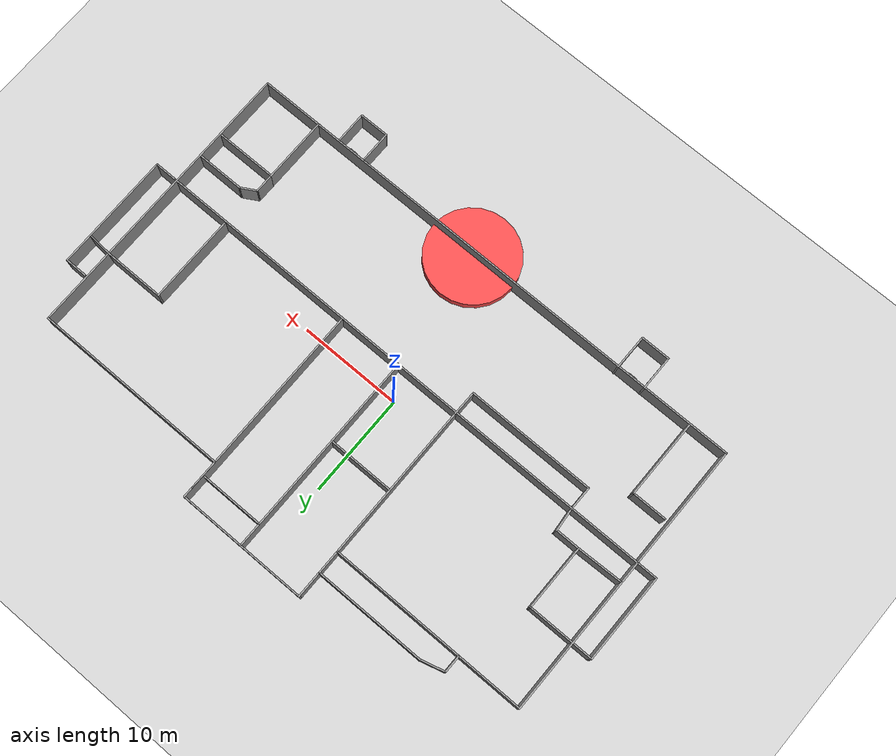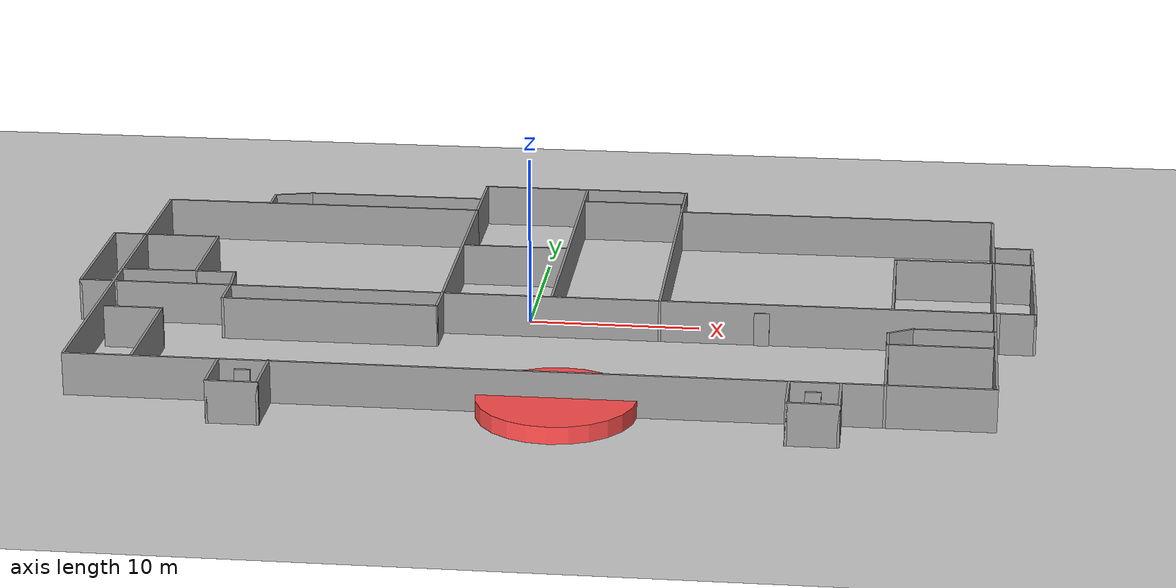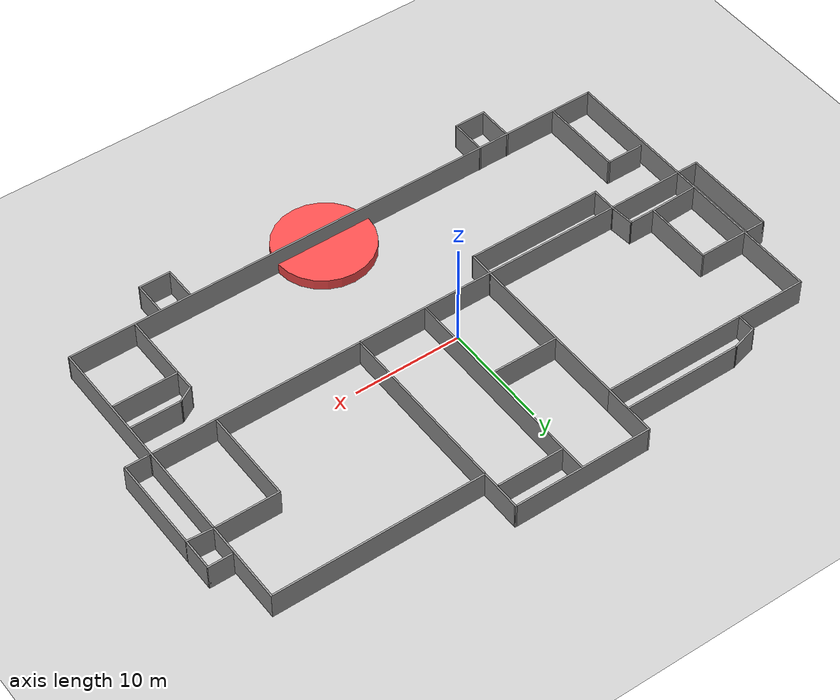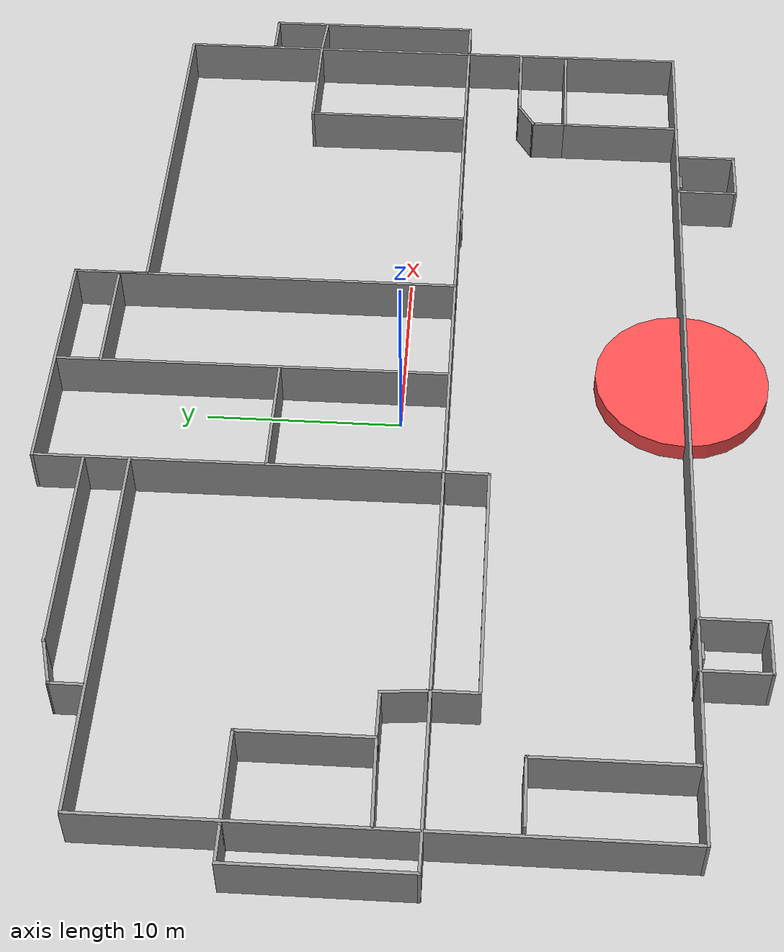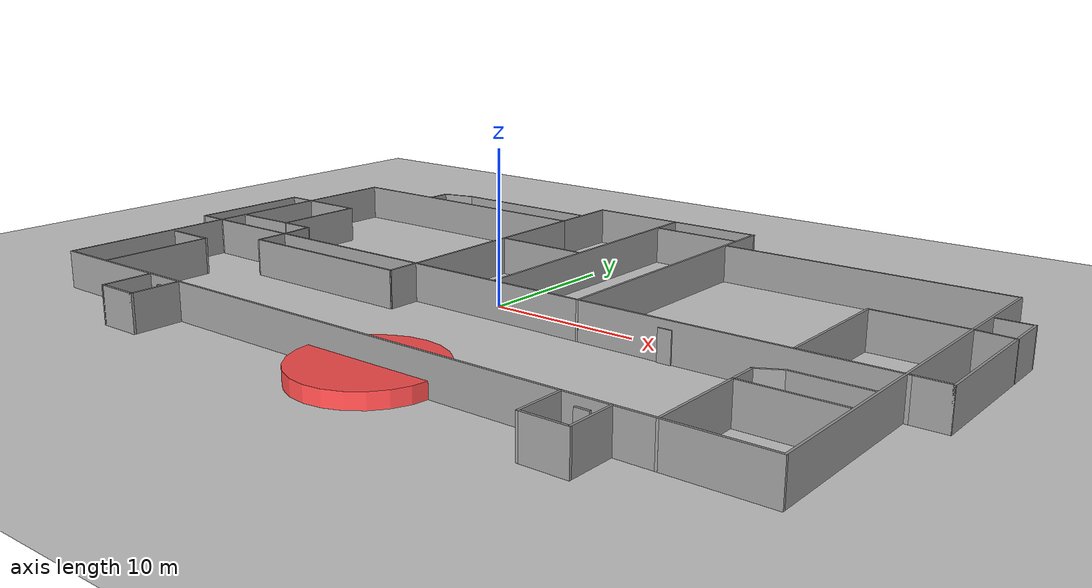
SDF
<sdf version="1.7">
 <world name="default">
  <light name="sun" type="directional">
   <pose>0 0 10 0 -0 0</pose>
   <diffuse>0.8 0.8 0.8 1</diffuse>
   <specular>0.2 0.2 0.2 1</specular>
   <attenuation>
    <range>1000</range>
    <constant>0.9</constant>
    <linear>0.01</linear>
    <quadratic>0.001</quadratic>
   </attenuation>
   <direction>-0.5 0.1 -0.9</direction>
   <spot><inner_angle>0</inner_angle><outer_angle>0</outer_angle><falloff>0</falloff></spot>
  </light>
  <model name="ground_plane">
   <static>1</static>
   <link name="link">
    <collision name="collision">
     <geometry><plane><normal>0 0 1</normal><size>100 100</size></plane></geometry>
     <surface>
      <contact><collide_bitmask>65535</collide_bitmask></contact>
      <friction><ode><mu>100</mu><mu2>50</mu2></ode></friction>
     </surface>
    </collision>
    <visual name="visual">
     <cast_shadows>0</cast_shadows>
     <geometry><plane><normal>0 0 1</normal><size>100 100</size></plane></geometry>
     <material>
      <script><uri>file://media/materials/scripts/gazebo.material</uri><name>Gazebo/Grey</name></script>
     </material>
    </visual>
   </link>
  </model>
  <gravity>0 0 -9.8</gravity>
  <magnetic_field>6e-06 2.3e-05 -4.2e-05</magnetic_field>
  <atmosphere type="adiabatic"/>
  <physics name="default_physics" default="0" type="ode">
   <max_step_size>0.001</max_step_size>
   <real_time_factor>1</real_time_factor>
   <real_time_update_rate>1000</real_time_update_rate>
  </physics>
  <scene><ambient>0.4 0.4 0.4 1</ambient><background>0.7 0.7 0.7 1</background><shadows>1</shadows></scene>
  <audio><device>default</device></audio>
  <spherical_coordinates>
   <surface_model>EARTH_WGS84</surface_model>
   <latitude_deg>0</latitude_deg>
   <longitude_deg>0</longitude_deg>
   <elevation>0</elevation>
   <heading_deg>0</heading_deg>
  </spherical_coordinates>
  <model name="NankiAirport_1F">
   <pose>1.5023 0.065 0 0 -0 0</pose>
   <link name="Door_0">
    <collision name="Door_0_Collision">
     <geometry><box><size>0.9 0.17 2</size></box></geometry>
     <pose>0 0 1 0 -0 0</pose>
    </collision>
    <visual name="Door_0_Visual">
     <pose>0 0 1 0 -0 0</pose>
     <geometry><box><size>0.9 0.17 2</size></box></geometry>
     <material>
      <script><uri>file://media/materials/scripts/gazebo.material</uri><name>Gazebo/Grey</name></script>
     </material>
    </visual>
    <pose>-15.871 -14.7686 0 0 -0 0</pose>
   </link>
   <link name="Door_1">
    <collision name="Door_1_Collision">
     <geometry><box><size>0.9 0.17 2</size></box></geometry>
     <pose>0 0 1 0 -0 0</pose>
    </collision>
    <visual name="Door_1_Visual">
     <pose>0 0 1 0 -0 0</pose>
     <geometry><box><size>0.9 0.17 2</size></box></geometry>
     <material>
      <script><uri>file://media/materials/scripts/gazebo.material</uri><name>Gazebo/Grey</name></script>
     </material>
    </visual>
    <pose>15.7475 -14.7686 0 0 -0 0</pose>
   </link>
   <link name="Door_2">
    <collision name="Door_2_Collision">
     <geometry><box><size>0.9 0.17 2</size></box></geometry>
     <pose>0 0 1 0 -0 0</pose>
    </collision>
    <visual name="Door_2_Visual">
     <pose>0 0 1 0 -0 0</pose>
     <geometry><box><size>0.9 0.17 2</size></box></geometry>
     <material>
      <script><uri>file://media/materials/scripts/gazebo.material</uri><name>Gazebo/Grey</name></script>
     </material>
    </visual>
    <pose>12.288 -2.5395 0 0 -0 0</pose>
   </link>
   <link name="Wall_100">
    <collision name="Wall_100_Collision">
     <geometry><box><size>4.53601 0.15 2.5</size></box></geometry>
     <pose>0 0 1.25 0 -0 0</pose>
    </collision>
    <visual name="Wall_100_Visual">
     <pose>0 0 1.25 0 -0 0</pose>
     <geometry><box><size>4.53601 0.15 2.5</size></box></geometry>
     <material>
      <script><uri>file://media/materials/scripts/gazebo.material</uri><name>Gazebo/Grey</name></script>
      <ambient>1 1 1 1</ambient>
     </material>
     <meta><layer>0</layer></meta>
    </visual>
    <pose>-23.7699 -0.271537 0 0 -0 0.028499</pose>
   </link>
   <link name="Wall_102">
    <collision name="Wall_102_Collision">
     <geometry><box><size>2.25 0.15 2.5</size></box></geometry>
     <pose>0 0 1.25 0 -0 0</pose>
    </collision>
    <visual name="Wall_102_Visual">
     <pose>0 0 1.25 0 -0 0</pose>
     <geometry><box><size>2.25 0.15 2.5</size></box></geometry>
     <material>
      <script><uri>file://media/materials/scripts/gazebo.material</uri><name>Gazebo/Grey</name></script>
      <ambient>1 1 1 1</ambient>
     </material>
     <meta><layer>0</layer></meta>
    </visual>
    <pose>26.9722 -2.45905 0 0 -0 0</pose>
   </link>
   <link name="Wall_103">
    <collision name="Wall_103_Collision">
     <geometry><box><size>11.75 0.15 2.5</size></box></geometry>
     <pose>0 0 1.25 0 -0 0</pose>
    </collision>
    <visual name="Wall_103_Visual">
     <pose>0 0 1.25 0 -0 0</pose>
     <geometry><box><size>11.75 0.15 2.5</size></box></geometry>
     <material>
      <script><uri>file://media/materials/scripts/gazebo.material</uri><name>Gazebo/Grey</name></script>
      <ambient>1 1 1 1</ambient>
     </material>
     <meta><layer>0</layer></meta>
    </visual>
    <pose>28.0222 3.34095 0 0 -0 1.5708</pose>
   </link>
   <link name="Wall_104">
    <collision name="Wall_104_Collision">
     <geometry><box><size>2.25 0.15 2.5</size></box></geometry>
     <pose>0 0 1.25 0 -0 0</pose>
    </collision>
    <visual name="Wall_104_Visual">
     <pose>0 0 1.25 0 -0 0</pose>
     <geometry><box><size>2.25 0.15 2.5</size></box></geometry>
     <material>
      <script><uri>file://media/materials/scripts/gazebo.material</uri><name>Gazebo/Grey</name></script>
      <ambient>1 1 1 1</ambient>
     </material>
     <meta><layer>0</layer></meta>
    </visual>
    <pose>26.9722 9.14095 0 0 -0 3.14159</pose>
   </link>
   <link name="Wall_106">
    <collision name="Wall_106_Collision">
     <geometry><box><size>2.48872 0.15 2.5</size></box></geometry>
     <pose>0 0 1.25 0 -0 0</pose>
    </collision>
    <visual name="Wall_106_Visual">
     <pose>0 0 1.25 0 -0 0</pose>
     <geometry><box><size>2.48872 0.15 2.5</size></box></geometry>
     <material>
      <script><uri>file://media/materials/scripts/gazebo.material</uri><name>Gazebo/Grey</name></script>
      <ambient>1 1 1 1</ambient>
     </material>
     <meta><layer>0</layer></meta>
    </visual>
    <pose>26.8562 6.26323 0 0 -0 3.07274</pose>
   </link>
   <link name="Wall_108">
    <collision name="Wall_108_Collision">
     <geometry><box><size>1.75 0.15 2.5</size></box></geometry>
     <pose>0 0 1.25 0 -0 0</pose>
    </collision>
    <visual name="Wall_108_Visual">
     <pose>0 0 1.25 0 -0 0</pose>
     <geometry><box><size>1.75 0.15 2.5</size></box></geometry>
     <material>
      <script><uri>file://media/materials/scripts/gazebo.material</uri><name>Gazebo/Grey</name></script>
      <ambient>1 1 1 1</ambient>
     </material>
     <meta><layer>0</layer></meta>
    </visual>
    <pose>-19.6061 13.9018 0 0 -0 1.5708</pose>
   </link>
   <link name="Wall_109">
    <collision name="Wall_109_Collision">
     <geometry><box><size>2.5 0.15 2.5</size></box></geometry>
     <pose>0 0 1.25 0 -0 0</pose>
    </collision>
    <visual name="Wall_109_Visual">
     <pose>0 0 1.25 0 -0 0</pose>
     <geometry><box><size>2.5 0.15 2.5</size></box></geometry>
     <material>
      <script><uri>file://media/materials/scripts/gazebo.material</uri><name>Gazebo/Grey</name></script>
      <ambient>1 1 1 1</ambient>
     </material>
     <meta><layer>0</layer></meta>
    </visual>
    <pose>-18.4712 15.006 0 0 -0 0.261799</pose>
   </link>
   <link name="Wall_110">
    <collision name="Wall_110_Collision">
     <geometry><box><size>11 0.15 2.5</size></box></geometry>
     <pose>0 0 1.25 0 -0 0</pose>
    </collision>
    <visual name="Wall_110_Visual">
     <pose>0 0 1.25 0 -0 0</pose>
     <geometry><box><size>11 0.15 2.5</size></box></geometry>
     <material>
      <script><uri>file://media/materials/scripts/gazebo.material</uri><name>Gazebo/Grey</name></script>
      <ambient>1 1 1 1</ambient>
     </material>
     <meta><layer>0</layer></meta>
    </visual>
    <pose>-11.9112 15.3101 0 0 -0 0</pose>
   </link>
   <link name="Wall_32">
    <collision name="Wall_32_Collision">
     <geometry><box><size>52 0.15 2.5</size></box></geometry>
     <pose>0 0 1.25 0 -0 0</pose>
    </collision>
    <visual name="Wall_32_Visual">
     <pose>0 0 1.25 0 -0 0</pose>
     <geometry><box><size>52 0.15 2.5</size></box></geometry>
     <material>
      <script><uri>file://media/materials/scripts/gazebo.material</uri><name>Gazebo/Grey</name></script>
      <ambient>1 1 1 1</ambient>
     </material>
     <meta><layer>0</layer></meta>
    </visual>
    <pose>-0.002788 -2.45905 0 0 -0 0</pose>
   </link>
   <link name="Wall_41">
    <collision name="Wall_41_Collision">
     <geometry><box><size>3.25 0.15 2.5</size></box></geometry>
     <pose>0 0 1.25 0 -0 0</pose>
    </collision>
    <visual name="Wall_41_Visual">
     <pose>0 0 1.25 0 -0 0</pose>
     <geometry><box><size>3.25 0.15 2.5</size></box></geometry>
     <material>
      <script><uri>file://media/materials/scripts/gazebo.material</uri><name>Gazebo/Grey</name></script>
      <ambient>1 1 1 1</ambient>
     </material>
     <meta><layer>0</layer></meta>
    </visual>
    <pose>17.261 -16.1693 0 0 -0 -1.5708</pose>
   </link>
   <link name="Wall_42">
    <collision name="Wall_42_Collision">
     <geometry><box><size>3 0.15 2.5</size></box></geometry>
     <pose>0 0 1.25 0 -0 0</pose>
    </collision>
    <visual name="Wall_42_Visual">
     <pose>0 0 1.25 0 -0 0</pose>
     <geometry><box><size>3 0.15 2.5</size></box></geometry>
     <material>
      <script><uri>file://media/materials/scripts/gazebo.material</uri><name>Gazebo/Grey</name></script>
      <ambient>1 1 1 1</ambient>
     </material>
     <meta><layer>0</layer></meta>
    </visual>
    <pose>15.836 -17.7193 0 0 -0 3.14159</pose>
   </link>
   <link name="Wall_43">
    <collision name="Wall_43_Collision">
     <geometry><box><size>3.25 0.15 2.5</size></box></geometry>
     <pose>0 0 1.25 0 -0 0</pose>
    </collision>
    <visual name="Wall_43_Visual">
     <pose>0 0 1.25 0 -0 0</pose>
     <geometry><box><size>3.25 0.15 2.5</size></box></geometry>
     <material>
      <script><uri>file://media/materials/scripts/gazebo.material</uri><name>Gazebo/Grey</name></script>
      <ambient>1 1 1 1</ambient>
     </material>
     <meta><layer>0</layer></meta>
    </visual>
    <pose>14.411 -16.1693 0 0 -0 1.5708</pose>
   </link>
   <link name="Wall_45">
    <collision name="Wall_45_Collision">
     <geometry><box><size>3.5 0.15 2.5</size></box></geometry>
     <pose>0 0 1.25 0 -0 0</pose>
    </collision>
    <visual name="Wall_45_Visual">
     <pose>0 0 1.25 0 -0 0</pose>
     <geometry><box><size>3.5 0.15 2.5</size></box></geometry>
     <material>
      <script><uri>file://media/materials/scripts/gazebo.material</uri><name>Gazebo/Grey</name></script>
      <ambient>1 1 1 1</ambient>
     </material>
     <meta><layer>0</layer></meta>
    </visual>
    <pose>-14.41 -16.2023 0 0 -0 -1.5708</pose>
   </link>
   <link name="Wall_46">
    <collision name="Wall_46_Collision">
     <geometry><box><size>3 0.15 2.5</size></box></geometry>
     <pose>0 0 1.25 0 -0 0</pose>
    </collision>
    <visual name="Wall_46_Visual">
     <pose>0 0 1.25 0 -0 0</pose>
     <geometry><box><size>3 0.15 2.5</size></box></geometry>
     <material>
      <script><uri>file://media/materials/scripts/gazebo.material</uri><name>Gazebo/Grey</name></script>
      <ambient>1 1 1 1</ambient>
     </material>
     <meta><layer>0</layer></meta>
    </visual>
    <pose>-15.835 -17.8773 0 0 -0 3.14159</pose>
   </link>
   <link name="Wall_47">
    <collision name="Wall_47_Collision">
     <geometry><box><size>3.5 0.15 2.5</size></box></geometry>
     <pose>0 0 1.25 0 -0 0</pose>
    </collision>
    <visual name="Wall_47_Visual">
     <pose>0 0 1.25 0 -0 0</pose>
     <geometry><box><size>3.5 0.15 2.5</size></box></geometry>
     <material>
      <script><uri>file://media/materials/scripts/gazebo.material</uri><name>Gazebo/Grey</name></script>
      <ambient>1 1 1 1</ambient>
     </material>
     <meta><layer>0</layer></meta>
    </visual>
    <pose>-17.26 -16.2023 0 0 -0 1.5708</pose>
   </link>
   <link name="Wall_54">
    <collision name="Wall_54_Collision">
     <geometry><box><size>20.5 0.15 2.5</size></box></geometry>
     <pose>0 0 1.25 0 -0 0</pose>
    </collision>
    <visual name="Wall_54_Visual">
     <pose>0 0 1.25 0 -0 0</pose>
     <geometry><box><size>20.5 0.15 2.5</size></box></geometry>
     <material>
      <script><uri>file://media/materials/scripts/gazebo.material</uri><name>Gazebo/Grey</name></script>
      <ambient>1 1 1 1</ambient>
     </material>
     <meta><layer>0</layer></meta>
    </visual>
    <pose>6.34318 7.70228 0 0 -0 1.5708</pose>
   </link>
   <link name="Wall_57">
    <collision name="Wall_57_Collision">
     <geometry><box><size>20.25 0.15 2.5</size></box></geometry>
     <pose>0 0 1.25 0 -0 0</pose>
    </collision>
    <visual name="Wall_57_Visual">
     <pose>0 0 1.25 0 -0 0</pose>
     <geometry><box><size>20.25 0.15 2.5</size></box></geometry>
     <material>
      <script><uri>file://media/materials/scripts/gazebo.material</uri><name>Gazebo/Grey</name></script>
      <ambient>1 1 1 1</ambient>
     </material>
     <meta><layer>0</layer></meta>
    </visual>
    <pose>0.024714 7.70462 0 0 -0 1.5708</pose>
   </link>
   <link name="Wall_62">
    <collision name="Wall_62_Collision">
     <geometry><box><size>27.75 0.15 2.5</size></box></geometry>
     <pose>0 0 1.25 0 -0 0</pose>
    </collision>
    <visual name="Wall_62_Visual">
     <pose>0 0 1.25 0 -0 0</pose>
     <geometry><box><size>27.75 0.15 2.5</size></box></geometry>
     <material>
      <script><uri>file://media/materials/scripts/gazebo.material</uri><name>Gazebo/Grey</name></script>
      <ambient>1 1 1 1</ambient>
     </material>
     <meta><layer>0</layer></meta>
    </visual>
    <pose>-26.0425 -0.774435 0 0 -0 1.5708</pose>
   </link>
   <link name="Wall_63">
    <collision name="Wall_63_Collision">
     <geometry><box><size>19.75 0.15 2.5</size></box></geometry>
     <pose>0 0 1.25 0 -0 0</pose>
    </collision>
    <visual name="Wall_63_Visual">
     <pose>0 0 1.25 0 -0 0</pose>
     <geometry><box><size>19.75 0.15 2.5</size></box></geometry>
     <material>
      <script><uri>file://media/materials/scripts/gazebo.material</uri><name>Gazebo/Grey</name></script>
      <ambient>1 1 1 1</ambient>
     </material>
     <meta><layer>0</layer></meta>
    </visual>
    <pose>-16.2425 13.0256 0 0 -0 0</pose>
   </link>
   <link name="Wall_64">
    <collision name="Wall_64_Collision">
     <geometry><box><size>5 0.15 2.5</size></box></geometry>
     <pose>0 0 1.25 0 -0 0</pose>
    </collision>
    <visual name="Wall_64_Visual">
     <pose>0 0 1.25 0 -0 0</pose>
     <geometry><box><size>5 0.15 2.5</size></box></geometry>
     <material>
      <script><uri>file://media/materials/scripts/gazebo.material</uri><name>Gazebo/Grey</name></script>
      <ambient>1 1 1 1</ambient>
     </material>
     <meta><layer>0</layer></meta>
    </visual>
    <pose>-6.44247 15.4506 0 0 -0 1.5708</pose>
   </link>
   <link name="Wall_65">
    <collision name="Wall_65_Collision">
     <geometry><box><size>12.9357 0.15 2.5</size></box></geometry>
     <pose>0 0 1.25 0 -0 0</pose>
    </collision>
    <visual name="Wall_65_Visual">
     <pose>0 0 1.25 0 -0 0</pose>
     <geometry><box><size>12.9357 0.15 2.5</size></box></geometry>
     <material>
      <script><uri>file://media/materials/scripts/gazebo.material</uri><name>Gazebo/Grey</name></script>
      <ambient>1 1 1 1</ambient>
     </material>
     <meta><layer>0</layer></meta>
    </visual>
    <pose>-0.049649 17.8764 0 0 -0 0.000134</pose>
   </link>
   <link name="Wall_66">
    <collision name="Wall_66_Collision">
     <geometry><box><size>4 0.15 2.5</size></box></geometry>
     <pose>0 0 1.25 0 -0 0</pose>
    </collision>
    <visual name="Wall_66_Visual">
     <pose>0 0 1.25 0 -0 0</pose>
     <geometry><box><size>4 0.15 2.5</size></box></geometry>
     <material>
      <script><uri>file://media/materials/scripts/gazebo.material</uri><name>Gazebo/Grey</name></script>
      <ambient>1 1 1 1</ambient>
     </material>
     <meta><layer>0</layer></meta>
    </visual>
    <pose>6.34318 15.9523 0 0 -0 -1.5708</pose>
   </link>
   <link name="Wall_67">
    <collision name="Wall_67_Collision">
     <geometry><box><size>19.5 0.15 2.5</size></box></geometry>
     <pose>0 0 1.25 0 -0 0</pose>
    </collision>
    <visual name="Wall_67_Visual">
     <pose>0 0 1.25 0 -0 0</pose>
     <geometry><box><size>19.5 0.15 2.5</size></box></geometry>
     <material>
      <script><uri>file://media/materials/scripts/gazebo.material</uri><name>Gazebo/Grey</name></script>
      <ambient>1 1 1 1</ambient>
     </material>
     <meta><layer>0</layer></meta>
    </visual>
    <pose>16.0182 14.0273 0 0 -0 0</pose>
   </link>
   <link name="Wall_68">
    <collision name="Wall_68_Collision">
     <geometry><box><size>28.75 0.15 2.5</size></box></geometry>
     <pose>0 0 1.25 0 -0 0</pose>
    </collision>
    <visual name="Wall_68_Visual">
     <pose>0 0 1.25 0 -0 0</pose>
     <geometry><box><size>28.75 0.15 2.5</size></box></geometry>
     <material>
      <script><uri>file://media/materials/scripts/gazebo.material</uri><name>Gazebo/Grey</name></script>
      <ambient>1 1 1 1</ambient>
     </material>
     <meta><layer>0</layer></meta>
    </visual>
    <pose>25.6932 -0.272716 0 0 -0 -1.5708</pose>
   </link>
   <link name="Wall_69">
    <collision name="Wall_69_Collision">
     <geometry><box><size>51.8857 0.15 2.5</size></box></geometry>
     <pose>0 0 1.25 0 -0 0</pose>
    </collision>
    <visual name="Wall_69_Visual">
     <pose>0 0 1.25 0 -0 0</pose>
     <geometry><box><size>51.8857 0.15 2.5</size></box></geometry>
     <material>
      <script><uri>file://media/materials/scripts/gazebo.material</uri><name>Gazebo/Grey</name></script>
      <ambient>1 1 1 1</ambient>
     </material>
     <meta><layer>0</layer></meta>
    </visual>
    <pose>-0.174649 -14.5736 0 0 -0 -3.14156</pose>
   </link>
   <link name="Wall_71">
    <collision name="Wall_71_Collision">
     <geometry><box><size>15.521 0.15 2.5</size></box></geometry>
     <pose>0 0 1.25 0 -0 0</pose>
    </collision>
    <visual name="Wall_71_Visual">
     <pose>0 0 1.25 0 -0 0</pose>
     <geometry><box><size>15.521 0.15 2.5</size></box></geometry>
     <material>
      <script><uri>file://media/materials/scripts/gazebo.material</uri><name>Gazebo/Grey</name></script>
      <ambient>1 1 1 1</ambient>
     </material>
     <meta><layer>0</layer></meta>
    </visual>
    <pose>-6.42705 5.34009 0 0 -0 1.5728</pose>
   </link>
   <link name="Wall_73">
    <collision name="Wall_73_Collision">
     <geometry><box><size>6.5 0.15 2.5</size></box></geometry>
     <pose>0 0 1.25 0 -0 0</pose>
    </collision>
    <visual name="Wall_73_Visual">
     <pose>0 0 1.25 0 -0 0</pose>
     <geometry><box><size>6.5 0.15 2.5</size></box></geometry>
     <material>
      <script><uri>file://media/materials/scripts/gazebo.material</uri><name>Gazebo/Grey</name></script>
      <ambient>1 1 1 1</ambient>
     </material>
     <meta><layer>0</layer></meta>
    </visual>
    <pose>-3.23663 6.26323 0 0 -0 0</pose>
   </link>
   <link name="Wall_75">
    <collision name="Wall_75_Collision">
     <geometry><box><size>6.25 0.15 2.5</size></box></geometry>
     <pose>0 0 1.25 0 -0 0</pose>
    </collision>
    <visual name="Wall_75_Visual">
     <pose>0 0 1.25 0 -0 0</pose>
     <geometry><box><size>6.25 0.15 2.5</size></box></geometry>
     <material>
      <script><uri>file://media/materials/scripts/gazebo.material</uri><name>Gazebo/Grey</name></script>
      <ambient>1 1 1 1</ambient>
     </material>
     <meta><layer>0</layer></meta>
    </visual>
    <pose>3.07471 15.5155 0 0 -0 0</pose>
   </link>
   <link name="Wall_77">
    <collision name="Wall_77_Collision">
     <geometry><box><size>6 0.15 2.5</size></box></geometry>
     <pose>0 0 1.25 0 -0 0</pose>
    </collision>
    <visual name="Wall_77_Visual">
     <pose>0 0 1.25 0 -0 0</pose>
     <geometry><box><size>6 0.15 2.5</size></box></geometry>
     <material>
      <script><uri>file://media/materials/scripts/gazebo.material</uri><name>Gazebo/Grey</name></script>
      <ambient>1 1 1 1</ambient>
     </material>
     <meta><layer>0</layer></meta>
    </visual>
    <pose>22.7646 6.34368 0 0 -0 3.14159</pose>
   </link>
   <link name="Wall_78">
    <collision name="Wall_78_Collision">
     <geometry><box><size>8.75 0.15 2.5</size></box></geometry>
     <pose>0 0 1.25 0 -0 0</pose>
    </collision>
    <visual name="Wall_78_Visual">
     <pose>0 0 1.25 0 -0 0</pose>
     <geometry><box><size>8.75 0.15 2.5</size></box></geometry>
     <material>
      <script><uri>file://media/materials/scripts/gazebo.material</uri><name>Gazebo/Grey</name></script>
      <ambient>1 1 1 1</ambient>
     </material>
     <meta><layer>0</layer></meta>
    </visual>
    <pose>19.8396 2.04368 0 0 -0 -1.5708</pose>
   </link>
   <link name="Wall_80">
    <collision name="Wall_80_Collision">
     <geometry><box><size>2.5 0.15 2.5</size></box></geometry>
     <pose>0 0 1.25 0 -0 0</pose>
    </collision>
    <visual name="Wall_80_Visual">
     <pose>0 0 1.25 0 -0 0</pose>
     <geometry><box><size>2.5 0.15 2.5</size></box></geometry>
     <material>
      <script><uri>file://media/materials/scripts/gazebo.material</uri><name>Gazebo/Grey</name></script>
      <ambient>1 1 1 1</ambient>
     </material>
     <meta><layer>0</layer></meta>
    </visual>
    <pose>-19.043 -3.52038 0 0 -0 -1.5708</pose>
   </link>
   <link name="Wall_81">
    <collision name="Wall_81_Collision">
     <geometry><box><size>12.75 0.15 2.5</size></box></geometry>
     <pose>0 0 1.25 0 -0 0</pose>
    </collision>
    <visual name="Wall_81_Visual">
     <pose>0 0 1.25 0 -0 0</pose>
     <geometry><box><size>12.75 0.15 2.5</size></box></geometry>
     <material>
      <script><uri>file://media/materials/scripts/gazebo.material</uri><name>Gazebo/Grey</name></script>
      <ambient>1 1 1 1</ambient>
     </material>
     <meta><layer>0</layer></meta>
    </visual>
    <pose>-12.743 -4.69538 0 0 -0 0</pose>
   </link>
   <link name="Wall_82">
    <collision name="Wall_82_Collision">
     <geometry><box><size>2.50021 0.15 2.5</size></box></geometry>
     <pose>0 0 1.25 0 -0 0</pose>
    </collision>
    <visual name="Wall_82_Visual">
     <pose>0 0 1.25 0 -0 0</pose>
     <geometry><box><size>2.50021 0.15 2.5</size></box></geometry>
     <material>
      <script><uri>file://media/materials/scripts/gazebo.material</uri><name>Gazebo/Grey</name></script>
      <ambient>1 1 1 1</ambient>
     </material>
     <meta><layer>0</layer></meta>
    </visual>
    <pose>-6.42729 -3.52038 0 0 -0 1.55747</pose>
   </link>
   <link name="Wall_84">
    <collision name="Wall_84_Collision">
     <geometry><box><size>6.5 0.15 2.5</size></box></geometry>
     <pose>0 0 1.25 0 -0 0</pose>
    </collision>
    <visual name="Wall_84_Visual">
     <pose>0 0 1.25 0 -0 0</pose>
     <geometry><box><size>6.5 0.15 2.5</size></box></geometry>
     <material>
      <script><uri>file://media/materials/scripts/gazebo.material</uri><name>Gazebo/Grey</name></script>
      <ambient>1 1 1 1</ambient>
     </material>
     <meta><layer>0</layer></meta>
    </visual>
    <pose>19.6556 -11.3994 0 0 -0 1.5708</pose>
   </link>
   <link name="Wall_85">
    <collision name="Wall_85_Collision">
     <geometry><box><size>6 0.15 2.5</size></box></geometry>
     <pose>0 0 1.25 0 -0 0</pose>
    </collision>
    <visual name="Wall_85_Visual">
     <pose>0 0 1.25 0 -0 0</pose>
     <geometry><box><size>6 0.15 2.5</size></box></geometry>
     <material>
      <script><uri>file://media/materials/scripts/gazebo.material</uri><name>Gazebo/Grey</name></script>
      <ambient>1 1 1 1</ambient>
     </material>
     <meta><layer>0</layer></meta>
    </visual>
    <pose>22.5806 -8.22444 0 0 -0 0</pose>
   </link>
   <link name="Wall_87">
    <collision name="Wall_87_Collision">
     <geometry><box><size>2 0.15 2.5</size></box></geometry>
     <pose>0 0 1.25 0 -0 0</pose>
    </collision>
    <visual name="Wall_87_Visual">
     <pose>0 0 1.25 0 -0 0</pose>
     <geometry><box><size>2 0.15 2.5</size></box></geometry>
     <material>
      <script><uri>file://media/materials/scripts/gazebo.material</uri><name>Gazebo/Grey</name></script>
      <ambient>1 1 1 1</ambient>
     </material>
     <meta><layer>0</layer></meta>
    </visual>
    <pose>19.6556 -7.29943 0 0 -0 1.5708</pose>
   </link>
   <link name="Wall_88">
    <collision name="Wall_88_Collision">
     <geometry><box><size>1.75 0.15 2.5</size></box></geometry>
     <pose>0 0 1.25 0 -0 0</pose>
    </collision>
    <visual name="Wall_88_Visual">
     <pose>0 0 1.25 0 -0 0</pose>
     <geometry><box><size>1.75 0.15 2.5</size></box></geometry>
     <material>
      <script><uri>file://media/materials/scripts/gazebo.material</uri><name>Gazebo/Grey</name></script>
      <ambient>1 1 1 1</ambient>
     </material>
     <meta><layer>0</layer></meta>
    </visual>
    <pose>20.3484 -5.97443 0 0 -0 0.523599</pose>
   </link>
   <link name="Wall_89">
    <collision name="Wall_89_Collision">
     <geometry><box><size>4.75 0.15 2.5</size></box></geometry>
     <pose>0 0 1.25 0 -0 0</pose>
    </collision>
    <visual name="Wall_89_Visual">
     <pose>0 0 1.25 0 -0 0</pose>
     <geometry><box><size>4.75 0.15 2.5</size></box></geometry>
     <material>
      <script><uri>file://media/materials/scripts/gazebo.material</uri><name>Gazebo/Grey</name></script>
      <ambient>1 1 1 1</ambient>
     </material>
     <meta><layer>0</layer></meta>
    </visual>
    <pose>23.3412 -5.57444 0 0 -0 0</pose>
   </link>
   <link name="Wall_91">
    <collision name="Wall_91_Collision">
     <geometry><box><size>2.25 0.15 2.5</size></box></geometry>
     <pose>0 0 1.25 0 -0 0</pose>
    </collision>
    <visual name="Wall_91_Visual">
     <pose>0 0 1.25 0 -0 0</pose>
     <geometry><box><size>2.25 0.15 2.5</size></box></geometry>
     <material>
      <script><uri>file://media/materials/scripts/gazebo.material</uri><name>Gazebo/Grey</name></script>
      <ambient>1 1 1 1</ambient>
     </material>
     <meta><layer>0</layer></meta>
    </visual>
    <pose>-26.9778 -2.45905 0 0 -0 3.14159</pose>
   </link>
   <link name="Wall_92">
    <collision name="Wall_92_Collision">
     <geometry><box><size>8.75 0.15 2.5</size></box></geometry>
     <pose>0 0 1.25 0 -0 0</pose>
    </collision>
    <visual name="Wall_92_Visual">
     <pose>0 0 1.25 0 -0 0</pose>
     <geometry><box><size>8.75 0.15 2.5</size></box></geometry>
     <material>
      <script><uri>file://media/materials/scripts/gazebo.material</uri><name>Gazebo/Grey</name></script>
      <ambient>1 1 1 1</ambient>
     </material>
     <meta><layer>0</layer></meta>
    </visual>
    <pose>-28.0278 1.84095 0 0 -0 1.5708</pose>
   </link>
   <link name="Wall_93">
    <collision name="Wall_93_Collision">
     <geometry><box><size>2 0.15 2.5</size></box></geometry>
     <pose>0 0 1.25 0 -0 0</pose>
    </collision>
    <visual name="Wall_93_Visual">
     <pose>0 0 1.25 0 -0 0</pose>
     <geometry><box><size>2 0.15 2.5</size></box></geometry>
     <material>
      <script><uri>file://media/materials/scripts/gazebo.material</uri><name>Gazebo/Grey</name></script>
      <ambient>1 1 1 1</ambient>
     </material>
     <meta><layer>0</layer></meta>
    </visual>
    <pose>-27.1028 6.14095 0 0 -0 0</pose>
   </link>
   <link name="Wall_95">
    <collision name="Wall_95_Collision">
     <geometry><box><size>4.75 0.15 2.5</size></box></geometry>
     <pose>0 0 1.25 0 -0 0</pose>
    </collision>
    <visual name="Wall_95_Visual">
     <pose>0 0 1.25 0 -0 0</pose>
     <geometry><box><size>4.75 0.15 2.5</size></box></geometry>
     <material>
      <script><uri>file://media/materials/scripts/gazebo.material</uri><name>Gazebo/Grey</name></script>
      <ambient>1 1 1 1</ambient>
     </material>
     <meta><layer>0</layer></meta>
    </visual>
    <pose>-23.8778 6.14095 0 0 -0 0</pose>
   </link>
   <link name="Wall_96">
    <collision name="Wall_96_Collision">
     <geometry><box><size>6.5 0.15 2.5</size></box></geometry>
     <pose>0 0 1.25 0 -0 0</pose>
    </collision>
    <visual name="Wall_96_Visual">
     <pose>0 0 1.25 0 -0 0</pose>
     <geometry><box><size>6.5 0.15 2.5</size></box></geometry>
     <material>
      <script><uri>file://media/materials/scripts/gazebo.material</uri><name>Gazebo/Grey</name></script>
      <ambient>1 1 1 1</ambient>
     </material>
     <meta><layer>0</layer></meta>
    </visual>
    <pose>-21.5778 2.96595 0 0 -0 -1.5708</pose>
   </link>
   <link name="Wall_97">
    <collision name="Wall_97_Collision">
     <geometry><box><size>2.5 0.15 2.5</size></box></geometry>
     <pose>0 0 1.25 0 -0 0</pose>
    </collision>
    <visual name="Wall_97_Visual">
     <pose>0 0 1.25 0 -0 0</pose>
     <geometry><box><size>2.5 0.15 2.5</size></box></geometry>
     <material>
      <script><uri>file://media/materials/scripts/gazebo.material</uri><name>Gazebo/Grey</name></script>
      <ambient>1 1 1 1</ambient>
     </material>
     <meta><layer>0</layer></meta>
    </visual>
    <pose>-20.4028 -0.209047 0 0 -0 0</pose>
   </link>
   <link name="Wall_98">
    <collision name="Wall_98_Collision">
     <geometry><box><size>2.29432 0.15 2.5</size></box></geometry>
     <pose>0 0 1.25 0 -0 0</pose>
    </collision>
    <visual name="Wall_98_Visual">
     <pose>0 0 1.25 0 -0 0</pose>
     <geometry><box><size>2.29432 0.15 2.5</size></box></geometry>
     <material>
      <script><uri>file://media/materials/scripts/gazebo.material</uri><name>Gazebo/Grey</name></script>
      <ambient>1 1 1 1</ambient>
     </material>
     <meta><layer>0</layer></meta>
    </visual>
    <pose>-19.1354 -1.27722 0 0 -0 -1.48449</pose>
   </link>
   <static>1</static>
  </model>
  <model name="NankiAirport_1f">
   <pose>-22.3533 -10.5486 0 0 -0 0</pose>
   <link name="Wall_112">
    <collision name="Wall_112_Collision">
     <geometry><box><size>7.75 0.15 2.5</size></box></geometry>
     <pose>0 0 1.25 0 -0 0</pose>
    </collision>
    <visual name="Wall_112_Visual">
     <pose>0 0 1.25 0 -0 0</pose>
     <geometry><box><size>7.75 0.15 2.5</size></box></geometry>
     <material>
      <script><uri>file://media/materials/scripts/gazebo.material</uri><name>Gazebo/Grey</name></script>
      <ambient>1 1 1 1</ambient>
     </material>
     <meta><layer>0</layer></meta>
    </visual>
    <pose>1.675 -0 0 0 -0 1.5708</pose>
   </link>
   <link name="Wall_113">
    <collision name="Wall_113_Collision">
     <geometry><box><size>3.5 0.15 2.5</size></box></geometry>
     <pose>0 0 1.25 0 -0 0</pose>
    </collision>
    <visual name="Wall_113_Visual">
     <pose>0 0 1.25 0 -0 0</pose>
     <geometry><box><size>3.5 0.15 2.5</size></box></geometry>
     <material>
      <script><uri>file://media/materials/scripts/gazebo.material</uri><name>Gazebo/Grey</name></script>
      <ambient>1 1 1 1</ambient>
     </material>
     <meta><layer>0</layer></meta>
    </visual>
    <pose>0 3.8 0 0 -0 3.14159</pose>
   </link>
   <static>1</static>
  </model>
  <model name="NankiAirport_1f_hashira">
   <link name="link_7">
    <inertial>
     <mass>1</mass>
     <inertia><ixx>0.145833</ixx><ixy>0</ixy><ixz>0</ixz><iyy>0.145833</iyy><iyz>0</iyz><izz>0.125</izz></inertia>
    </inertial>
    <visual name="visual">
     <geometry><cylinder><radius>4.5</radius><length>1</length></cylinder></geometry>
     <material>
      <lighting>1</lighting>
      <script><uri>file://media/materials/scripts/gazebo.material</uri><name>Gazebo/Grey</name></script>
      <shader type="vertex"><normal_map>__default__</normal_map></shader>
      <ambient>1 0.3 0.3 1</ambient>
      <diffuse>0.7 0.7 0.7 1</diffuse>
      <specular>0.01 0.01 0.01 1</specular>
      <emissive>0 0 0 1</emissive>
     </material>
    </visual>
    <collision name="collision">
     <geometry><cylinder><radius>0.5</radius><length>1</length></cylinder></geometry>
     <surface>
      <friction>
       <ode><mu>1</mu><mu2>1</mu2><fdir1>0 0 0</fdir1><slip1>0</slip1><slip2>0</slip2></ode>
       <torsional>
        <coefficient>1</coefficient>
        <patch_radius>0</patch_radius>
        <surface_radius>0</surface_radius>
        <use_patch_radius>1</use_patch_radius>
        <ode><slip>0</slip></ode>
       </torsional>
      </friction>
      <bounce><restitution_coefficient>0</restitution_coefficient><threshold>1e+06</threshold></bounce>
      <contact>
       <collide_without_contact>0</collide_without_contact>
       <collide_without_contact_bitmask>1</collide_without_contact_bitmask>
       <collide_bitmask>1</collide_bitmask>
       <ode>
        <soft_cfm>0</soft_cfm>
        <soft_erp>0.2</soft_erp>
        <kp>1e+13</kp>
        <kd>1</kd>
        <max_vel>0.01</max_vel>
        <min_depth>0</min_depth>
       </ode>
       <bullet>
        <split_impulse>1</split_impulse>
        <split_impulse_penetration_threshold>-0.01</split_impulse_penetration_threshold>
        <soft_cfm>0</soft_cfm>
        <soft_erp>0.2</soft_erp>
        <kp>1e+13</kp>
        <kd>1</kd>
       </bullet>
      </contact>
     </surface>
    </collision>
   </link>
   <static>0</static>
   <pose>3.13393 -14.4118 0.499996 -2e-06 -2e-06 0</pose>
  </model>
 </world>
</sdf>
